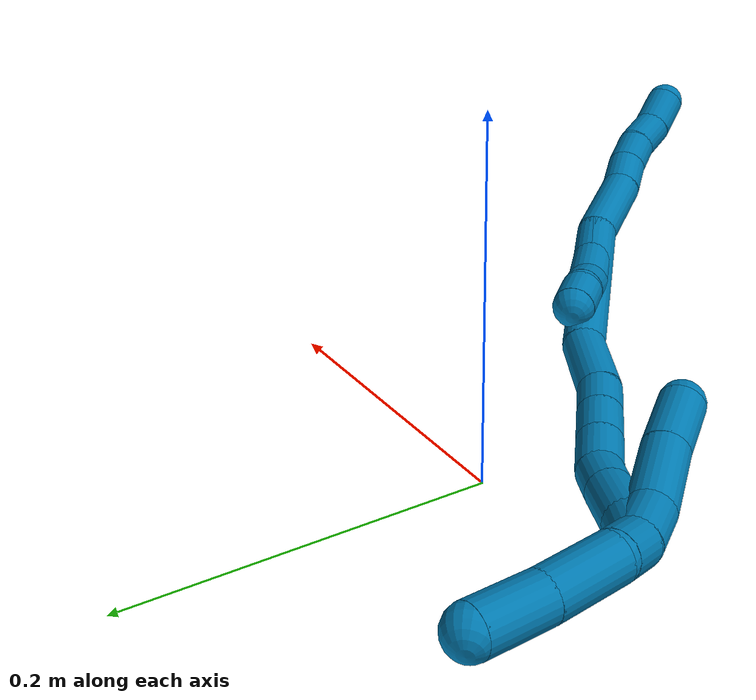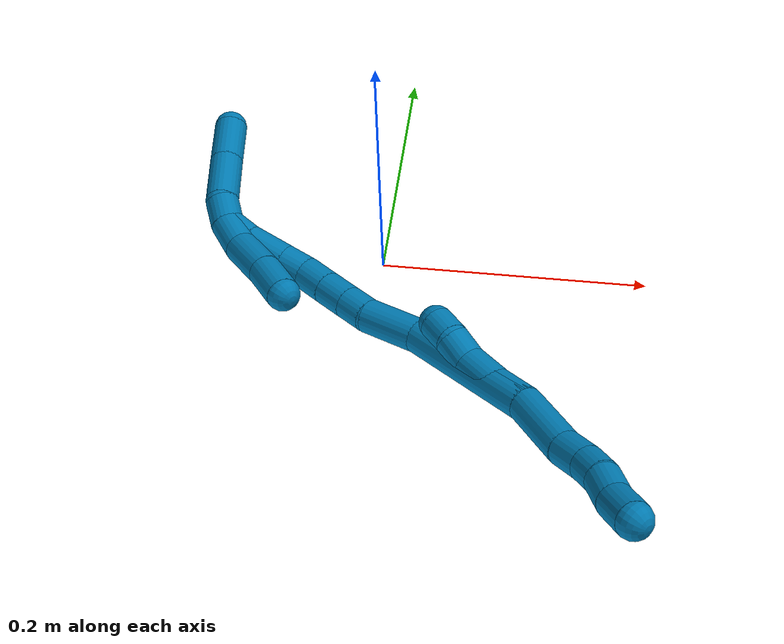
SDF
<sdf version="1.7">
 <world name="default">
  <model name="9">
   <static>0</static>
   <link name="9">
    <collision name="collision-cylinder-e_1_2_8">
     <pose>-0.001348 -0.007011 0.025579 0.267531 -0.05077 -0.006834</pose>
     <geometry><cylinder><radius>0.0125</radius><length>0.053114</length></cylinder></geometry>
     <surface>
      <friction><ode><mu>1.16</mu><mu2>1.16</mu2><slip1>0</slip1><slip2>0</slip2></ode></friction>
      <contact><ode><kp>1e+06</kp><kd>1</kd><max_vel>0</max_vel><min_depth>0.001</min_depth></ode></contact>
     </surface>
    </collision>
    <visual name="visual-cylinder-e_1_2_8">
     <pose>-0.001348 -0.007011 0.025579 0.267531 -0.05077 -0.006834</pose>
     <geometry><cylinder><radius>0.0125</radius><length>0.053114</length></cylinder></geometry>
     <material><ambient>0 0.490196 0.709804 1</ambient></material>
    </visual>
    <collision name="collision-cylinder-e_2_8_9">
     <pose>-0.004974 -0.015944 0.062963 0.16131 -0.188233 -0.01526</pose>
     <geometry><cylinder><radius>0.0125</radius><length>0.02435</length></cylinder></geometry>
     <surface>
      <friction><ode><mu>1.16</mu><mu2>1.16</mu2><slip1>0</slip1><slip2>0</slip2></ode></friction>
      <contact><ode><kp>1e+06</kp><kd>1</kd><max_vel>0</max_vel><min_depth>0.001</min_depth></ode></contact>
     </surface>
    </collision>
    <visual name="visual-cylinder-e_2_8_9">
     <pose>-0.004974 -0.015944 0.062963 0.16131 -0.188233 -0.01526</pose>
     <geometry><cylinder><radius>0.0125</radius><length>0.02435</length></cylinder></geometry>
     <material><ambient>0 0.490196 0.709804 1</ambient></material>
    </visual>
    <collision name="collision-cylinder-e_3_9_10">
     <pose>-0.009719 -0.021236 0.084675 0.328045 -0.231537 -0.038489</pose>
     <geometry><cylinder><radius>0.0125</radius><length>0.021504</length></cylinder></geometry>
     <surface>
      <friction><ode><mu>1.16</mu><mu2>1.16</mu2><slip1>0</slip1><slip2>0</slip2></ode></friction>
      <contact><ode><kp>1e+06</kp><kd>1</kd><max_vel>0</max_vel><min_depth>0.001</min_depth></ode></contact>
     </surface>
    </collision>
    <visual name="visual-cylinder-e_3_9_10">
     <pose>-0.009719 -0.021236 0.084675 0.328045 -0.231537 -0.038489</pose>
     <geometry><cylinder><radius>0.0125</radius><length>0.021504</length></cylinder></geometry>
     <material><ambient>0 0.490196 0.709804 1</ambient></material>
    </visual>
    <collision name="collision-cylinder-e_4_10_11">
     <pose>-0.013262 -0.029968 0.104903 0.479021 -0.092254 -0.022543</pose>
     <geometry><cylinder><radius>0.0125</radius><length>0.023359</length></cylinder></geometry>
     <surface>
      <friction><ode><mu>1.16</mu><mu2>1.16</mu2><slip1>0</slip1><slip2>0</slip2></ode></friction>
      <contact><ode><kp>1e+06</kp><kd>1</kd><max_vel>0</max_vel><min_depth>0.001</min_depth></ode></contact>
     </surface>
    </collision>
    <visual name="visual-cylinder-e_4_10_11">
     <pose>-0.013262 -0.029968 0.104903 0.479021 -0.092254 -0.022543</pose>
     <geometry><cylinder><radius>0.0125</radius><length>0.023359</length></cylinder></geometry>
     <material><ambient>0 0.490196 0.709804 1</ambient></material>
    </visual>
    <collision name="collision-cylinder-e_5_11_6">
     <pose>-0.018089 -0.04035 0.127559 0.386597 -0.274535 -0.054065</pose>
     <geometry><cylinder><radius>0.0125</radius><length>0.027673</length></cylinder></geometry>
     <surface>
      <friction><ode><mu>1.16</mu><mu2>1.16</mu2><slip1>0</slip1><slip2>0</slip2></ode></friction>
      <contact><ode><kp>1e+06</kp><kd>1</kd><max_vel>0</max_vel><min_depth>0.001</min_depth></ode></contact>
     </surface>
    </collision>
    <visual name="visual-cylinder-e_5_11_6">
     <pose>-0.018089 -0.04035 0.127559 0.386597 -0.274535 -0.054065</pose>
     <geometry><cylinder><radius>0.0125</radius><length>0.027673</length></cylinder></geometry>
     <material><ambient>0 0.490196 0.709804 1</ambient></material>
    </visual>
    <collision name="collision-cylinder-e_1_2_12">
     <pose>0.001048 0.000502 -0.014705 -3.10745 0.071116 -2.24669</pose>
     <geometry><cylinder><radius>0.0125</radius><length>0.029501</length></cylinder></geometry>
     <surface>
      <friction><ode><mu>1.16</mu><mu2>1.16</mu2><slip1>0</slip1><slip2>0</slip2></ode></friction>
      <contact><ode><kp>1e+06</kp><kd>1</kd><max_vel>0</max_vel><min_depth>0.001</min_depth></ode></contact>
     </surface>
    </collision>
    <visual name="visual-cylinder-e_1_2_12">
     <pose>0.001048 0.000502 -0.014705 -3.10745 0.071116 -2.24669</pose>
     <geometry><cylinder><radius>0.0125</radius><length>0.029501</length></cylinder></geometry>
     <material><ambient>0 0.490196 0.709804 1</ambient></material>
    </visual>
    <collision name="collision-cylinder-e_2_12_13">
     <pose>0.001263 0.001701 -0.044057 -3.09407 -0.056772 1.74782</pose>
     <geometry><cylinder><radius>0.0125</radius><length>0.029376</length></cylinder></geometry>
     <surface>
      <friction><ode><mu>1.16</mu><mu2>1.16</mu2><slip1>0</slip1><slip2>0</slip2></ode></friction>
      <contact><ode><kp>1e+06</kp><kd>1</kd><max_vel>0</max_vel><min_depth>0.001</min_depth></ode></contact>
     </surface>
    </collision>
    <visual name="visual-cylinder-e_2_12_13">
     <pose>0.001263 0.001701 -0.044057 -3.09407 -0.056772 1.74782</pose>
     <geometry><cylinder><radius>0.0125</radius><length>0.029376</length></cylinder></geometry>
     <material><ambient>0 0.490196 0.709804 1</ambient></material>
    </visual>
    <collision name="collision-cylinder-e_3_13_14">
     <pose>-0.003612 0.003012 -0.068329 -3.07784 -0.39686 2.82703</pose>
     <geometry><cylinder><radius>0.0125</radius><length>0.020914</length></cylinder></geometry>
     <surface>
      <friction><ode><mu>1.16</mu><mu2>1.16</mu2><slip1>0</slip1><slip2>0</slip2></ode></friction>
      <contact><ode><kp>1e+06</kp><kd>1</kd><max_vel>0</max_vel><min_depth>0.001</min_depth></ode></contact>
     </surface>
    </collision>
    <visual name="visual-cylinder-e_3_13_14">
     <pose>-0.003612 0.003012 -0.068329 -3.07784 -0.39686 2.82703</pose>
     <geometry><cylinder><radius>0.0125</radius><length>0.020914</length></cylinder></geometry>
     <material><ambient>0 0.490196 0.709804 1</ambient></material>
    </visual>
    <collision name="collision-cylinder-e_4_14_5">
     <pose>-0.008546 0.005218 -0.087892 -2.98284 -0.088399 1.0149</pose>
     <geometry><cylinder><radius>0.0125</radius><length>0.020209</length></cylinder></geometry>
     <surface>
      <friction><ode><mu>1.16</mu><mu2>1.16</mu2><slip1>0</slip1><slip2>0</slip2></ode></friction>
      <contact><ode><kp>1e+06</kp><kd>1</kd><max_vel>0</max_vel><min_depth>0.001</min_depth></ode></contact>
     </surface>
    </collision>
    <visual name="visual-cylinder-e_4_14_5">
     <pose>-0.008546 0.005218 -0.087892 -2.98284 -0.088399 1.0149</pose>
     <geometry><cylinder><radius>0.0125</radius><length>0.020209</length></cylinder></geometry>
     <material><ambient>0 0.490196 0.709804 1</ambient></material>
    </visual>
    <collision name="collision-cylinder-e_1_2_15">
     <pose>0.004029 0.001285 -0.056317 -3.11878 0.071397 -2.52324</pose>
     <geometry><cylinder><radius>0.0125</radius><length>0.112951</length></cylinder></geometry>
     <surface>
      <friction><ode><mu>1.16</mu><mu2>1.16</mu2><slip1>0</slip1><slip2>0</slip2></ode></friction>
      <contact><ode><kp>1e+06</kp><kd>1</kd><max_vel>0</max_vel><min_depth>0.001</min_depth></ode></contact>
     </surface>
    </collision>
    <visual name="visual-cylinder-e_1_2_15">
     <pose>0.004029 0.001285 -0.056317 -3.11878 0.071397 -2.52324</pose>
     <geometry><cylinder><radius>0.0125</radius><length>0.112951</length></cylinder></geometry>
     <material><ambient>0 0.490196 0.709804 1</ambient></material>
    </visual>
    <collision name="collision-cylinder-e_2_15_16">
     <pose>0.008054 -0.003176 -0.133818 2.87671 -0.000147 -0.001102</pose>
     <geometry><cylinder><radius>0.0125</radius><length>0.0439</length></cylinder></geometry>
     <surface>
      <friction><ode><mu>1.16</mu><mu2>1.16</mu2><slip1>0</slip1><slip2>0</slip2></ode></friction>
      <contact><ode><kp>1e+06</kp><kd>1</kd><max_vel>0</max_vel><min_depth>0.001</min_depth></ode></contact>
     </surface>
    </collision>
    <visual name="visual-cylinder-e_2_15_16">
     <pose>0.008054 -0.003176 -0.133818 2.87671 -0.000147 -0.001102</pose>
     <geometry><cylinder><radius>0.0125</radius><length>0.0439</length></cylinder></geometry>
     <material><ambient>0 0.490196 0.709804 1</ambient></material>
    </visual>
    <collision name="collision-cylinder-e_3_16_17">
     <pose>0.00761 -0.009505 -0.165444 3.0859 -0.042114 -1.29471</pose>
     <geometry><cylinder><radius>0.0125</radius><length>0.020934</length></cylinder></geometry>
     <surface>
      <friction><ode><mu>1.16</mu><mu2>1.16</mu2><slip1>0</slip1><slip2>0</slip2></ode></friction>
      <contact><ode><kp>1e+06</kp><kd>1</kd><max_vel>0</max_vel><min_depth>0.001</min_depth></ode></contact>
     </surface>
    </collision>
    <visual name="visual-cylinder-e_3_16_17">
     <pose>0.00761 -0.009505 -0.165444 3.0859 -0.042114 -1.29471</pose>
     <geometry><cylinder><radius>0.0125</radius><length>0.020934</length></cylinder></geometry>
     <material><ambient>0 0.490196 0.709804 1</ambient></material>
    </visual>
    <collision name="collision-cylinder-e_4_17_18">
     <pose>0.006622 -0.010756 -0.187631 3.0847 -0.046561 -1.37169</pose>
     <geometry><cylinder><radius>0.0125</radius><length>0.023556</length></cylinder></geometry>
     <surface>
      <friction><ode><mu>1.16</mu><mu2>1.16</mu2><slip1>0</slip1><slip2>0</slip2></ode></friction>
      <contact><ode><kp>1e+06</kp><kd>1</kd><max_vel>0</max_vel><min_depth>0.001</min_depth></ode></contact>
     </surface>
    </collision>
    <visual name="visual-cylinder-e_4_17_18">
     <pose>0.006622 -0.010756 -0.187631 3.0847 -0.046561 -1.37169</pose>
     <geometry><cylinder><radius>0.0125</radius><length>0.023556</length></cylinder></geometry>
     <material><ambient>0 0.490196 0.709804 1</ambient></material>
    </visual>
    <collision name="collision-cylinder-e_5_18_19">
     <pose>0.005357 -0.012073 -0.21162 3.08871 -0.058334 -1.66886</pose>
     <geometry><cylinder><radius>0.0125</radius><length>0.024561</length></cylinder></geometry>
     <surface>
      <friction><ode><mu>1.16</mu><mu2>1.16</mu2><slip1>0</slip1><slip2>0</slip2></ode></friction>
      <contact><ode><kp>1e+06</kp><kd>1</kd><max_vel>0</max_vel><min_depth>0.001</min_depth></ode></contact>
     </surface>
    </collision>
    <visual name="visual-cylinder-e_5_18_19">
     <pose>0.005357 -0.012073 -0.21162 3.08871 -0.058334 -1.66886</pose>
     <geometry><cylinder><radius>0.0125</radius><length>0.024561</length></cylinder></geometry>
     <material><ambient>0 0.490196 0.709804 1</ambient></material>
    </visual>
    <collision name="collision-cylinder-e_6_19_20">
     <pose>0.002457 -0.015853 -0.233283 2.82063 -0.216598 -1.1829</pose>
     <geometry><cylinder><radius>0.0125</radius><length>0.02033</length></cylinder></geometry>
     <surface>
      <friction><ode><mu>1.16</mu><mu2>1.16</mu2><slip1>0</slip1><slip2>0</slip2></ode></friction>
      <contact><ode><kp>1e+06</kp><kd>1</kd><max_vel>0</max_vel><min_depth>0.001</min_depth></ode></contact>
     </surface>
    </collision>
    <visual name="visual-cylinder-e_6_19_20">
     <pose>0.002457 -0.015853 -0.233283 2.82063 -0.216598 -1.1829</pose>
     <geometry><cylinder><radius>0.0125</radius><length>0.02033</length></cylinder></geometry>
     <material><ambient>0 0.490196 0.709804 1</ambient></material>
    </visual>
    <collision name="collision-cylinder-e_7_20_21">
     <pose>-0.003664 -0.024337 -0.257472 2.79392 -0.245529 -1.22496</pose>
     <geometry><cylinder><radius>0.0125</radius><length>0.032389</length></cylinder></geometry>
     <surface>
      <friction><ode><mu>1.16</mu><mu2>1.16</mu2><slip1>0</slip1><slip2>0</slip2></ode></friction>
      <contact><ode><kp>1e+06</kp><kd>1</kd><max_vel>0</max_vel><min_depth>0.001</min_depth></ode></contact>
     </surface>
    </collision>
    <visual name="visual-cylinder-e_7_20_21">
     <pose>-0.003664 -0.024337 -0.257472 2.79392 -0.245529 -1.22496</pose>
     <geometry><cylinder><radius>0.0125</radius><length>0.032389</length></cylinder></geometry>
     <material><ambient>0 0.490196 0.709804 1</ambient></material>
    </visual>
    <collision name="collision-cylinder-e_8_21_1">
     <pose>-0.011379 -0.03229 -0.281897 2.87841 -0.361236 -1.88723</pose>
     <geometry><cylinder><radius>0.0125</radius><length>0.02138</length></cylinder></geometry>
     <surface>
      <friction><ode><mu>1.16</mu><mu2>1.16</mu2><slip1>0</slip1><slip2>0</slip2></ode></friction>
      <contact><ode><kp>1e+06</kp><kd>1</kd><max_vel>0</max_vel><min_depth>0.001</min_depth></ode></contact>
     </surface>
    </collision>
    <visual name="visual-cylinder-e_8_21_1">
     <pose>-0.011379 -0.03229 -0.281897 2.87841 -0.361236 -1.88723</pose>
     <geometry><cylinder><radius>0.0125</radius><length>0.02138</length></cylinder></geometry>
     <material><ambient>0 0.490196 0.709804 1</ambient></material>
    </visual>
    <collision name="collision-cylinder-e_1_1_22">
     <pose>-0.019911 -0.031106 -0.300089 -2.72415 -0.470899 1.69502</pose>
     <geometry><cylinder><radius>0.0125</radius><length>0.020958</length></cylinder></geometry>
     <surface>
      <friction><ode><mu>1.16</mu><mu2>1.16</mu2><slip1>0</slip1><slip2>0</slip2></ode></friction>
      <contact><ode><kp>1e+06</kp><kd>1</kd><max_vel>0</max_vel><min_depth>0.001</min_depth></ode></contact>
     </surface>
    </collision>
    <visual name="visual-cylinder-e_1_1_22">
     <pose>-0.019911 -0.031106 -0.300089 -2.72415 -0.470899 1.69502</pose>
     <geometry><cylinder><radius>0.0125</radius><length>0.020958</length></cylinder></geometry>
     <material><ambient>0 0.490196 0.709804 1</ambient></material>
    </visual>
    <collision name="collision-cylinder-e_2_22_23">
     <pose>-0.029958 -0.014226 -0.324043 -2.43753 -0.255917 0.673812</pose>
     <geometry><cylinder><radius>0.0125</radius><length>0.041817</length></cylinder></geometry>
     <surface>
      <friction><ode><mu>1.16</mu><mu2>1.16</mu2><slip1>0</slip1><slip2>0</slip2></ode></friction>
      <contact><ode><kp>1e+06</kp><kd>1</kd><max_vel>0</max_vel><min_depth>0.001</min_depth></ode></contact>
     </surface>
    </collision>
    <visual name="visual-cylinder-e_2_22_23">
     <pose>-0.029958 -0.014226 -0.324043 -2.43753 -0.255917 0.673812</pose>
     <geometry><cylinder><radius>0.0125</radius><length>0.041817</length></cylinder></geometry>
     <material><ambient>0 0.490196 0.709804 1</ambient></material>
    </visual>
    <collision name="collision-cylinder-e_3_23_4">
     <pose>-0.041014 0.010661 -0.352657 -2.41223 -0.314818 0.78805</pose>
     <geometry><cylinder><radius>0.0125</radius><length>0.037225</length></cylinder></geometry>
     <surface>
      <friction><ode><mu>1.16</mu><mu2>1.16</mu2><slip1>0</slip1><slip2>0</slip2></ode></friction>
      <contact><ode><kp>1e+06</kp><kd>1</kd><max_vel>0</max_vel><min_depth>0.001</min_depth></ode></contact>
     </surface>
    </collision>
    <visual name="visual-cylinder-e_3_23_4">
     <pose>-0.041014 0.010661 -0.352657 -2.41223 -0.314818 0.78805</pose>
     <geometry><cylinder><radius>0.0125</radius><length>0.037225</length></cylinder></geometry>
     <material><ambient>0 0.490196 0.709804 1</ambient></material>
    </visual>
    <collision name="collision-cylinder-e_1_1_24">
     <pose>-0.012184 -0.037565 -0.27906 0.210762 0.228598 0.024284</pose>
     <geometry><cylinder><radius>0.0125</radius><length>0.026234</length></cylinder></geometry>
     <surface>
      <friction><ode><mu>1.16</mu><mu2>1.16</mu2><slip1>0</slip1><slip2>0</slip2></ode></friction>
      <contact><ode><kp>1e+06</kp><kd>1</kd><max_vel>0</max_vel><min_depth>0.001</min_depth></ode></contact>
     </surface>
    </collision>
    <visual name="visual-cylinder-e_1_1_24">
     <pose>-0.012184 -0.037565 -0.27906 0.210762 0.228598 0.024284</pose>
     <geometry><cylinder><radius>0.0125</radius><length>0.026234</length></cylinder></geometry>
     <material><ambient>0 0.490196 0.709804 1</ambient></material>
    </visual>
    <collision name="collision-cylinder-e_2_24_25">
     <pose>-0.009952 -0.043528 -0.246938 0.1661 -0.037156 -0.003093</pose>
     <geometry><cylinder><radius>0.0125</radius><length>0.039833</length></cylinder></geometry>
     <surface>
      <friction><ode><mu>1.16</mu><mu2>1.16</mu2><slip1>0</slip1><slip2>0</slip2></ode></friction>
      <contact><ode><kp>1e+06</kp><kd>1</kd><max_vel>0</max_vel><min_depth>0.001</min_depth></ode></contact>
     </surface>
    </collision>
    <visual name="visual-cylinder-e_2_24_25">
     <pose>-0.009952 -0.043528 -0.246938 0.1661 -0.037156 -0.003093</pose>
     <geometry><cylinder><radius>0.0125</radius><length>0.039833</length></cylinder></geometry>
     <material><ambient>0 0.490196 0.709804 1</ambient></material>
    </visual>
    <collision name="collision-cylinder-e_3_25_3">
     <pose>-0.010898 -0.050753 -0.210806 0.234052 -0.012191 -0.001433</pose>
     <geometry><cylinder><radius>0.0125</radius><length>0.033933</length></cylinder></geometry>
     <surface>
      <friction><ode><mu>1.16</mu><mu2>1.16</mu2><slip1>0</slip1><slip2>0</slip2></ode></friction>
      <contact><ode><kp>1e+06</kp><kd>1</kd><max_vel>0</max_vel><min_depth>0.001</min_depth></ode></contact>
     </surface>
    </collision>
    <visual name="visual-cylinder-e_3_25_3">
     <pose>-0.010898 -0.050753 -0.210806 0.234052 -0.012191 -0.001433</pose>
     <geometry><cylinder><radius>0.0125</radius><length>0.033933</length></cylinder></geometry>
     <material><ambient>0 0.490196 0.709804 1</ambient></material>
    </visual>
    <collision name="collision-sphere-3">
     <pose>-0.011105 -0.054688 -0.194303 0 -0 0</pose>
     <geometry><sphere><radius>0.0125</radius></sphere></geometry>
     <surface>
      <friction><ode><mu>1.16</mu><mu2>1.16</mu2><slip1>0</slip1><slip2>0</slip2></ode></friction>
      <contact><ode><kp>1e+06</kp><kd>1</kd><max_vel>0</max_vel><min_depth>0.001</min_depth></ode></contact>
     </surface>
    </collision>
    <visual name="visual-sphere-3">
     <pose>-0.011105 -0.054688 -0.194303 0 -0 0</pose>
     <geometry><sphere><radius>0.0125</radius></sphere></geometry>
     <material><ambient>0 0.490196 0.709804 1</ambient></material>
    </visual>
    <collision name="collision-sphere-25">
     <pose>-0.010692 -0.046819 -0.227309 0 -0 0</pose>
     <geometry><sphere><radius>0.0125</radius></sphere></geometry>
     <surface>
      <friction><ode><mu>1.16</mu><mu2>1.16</mu2><slip1>0</slip1><slip2>0</slip2></ode></friction>
      <contact><ode><kp>1e+06</kp><kd>1</kd><max_vel>0</max_vel><min_depth>0.001</min_depth></ode></contact>
     </surface>
    </collision>
    <visual name="visual-sphere-25">
     <pose>-0.010692 -0.046819 -0.227309 0 -0 0</pose>
     <geometry><sphere><radius>0.0125</radius></sphere></geometry>
     <material><ambient>0 0.490196 0.709804 1</ambient></material>
    </visual>
    <collision name="collision-sphere-24">
     <pose>-0.009212 -0.040237 -0.266567 0 -0 0</pose>
     <geometry><sphere><radius>0.0125</radius></sphere></geometry>
     <surface>
      <friction><ode><mu>1.16</mu><mu2>1.16</mu2><slip1>0</slip1><slip2>0</slip2></ode></friction>
      <contact><ode><kp>1e+06</kp><kd>1</kd><max_vel>0</max_vel><min_depth>0.001</min_depth></ode></contact>
     </surface>
    </collision>
    <visual name="visual-sphere-24">
     <pose>-0.009212 -0.040237 -0.266567 0 -0 0</pose>
     <geometry><sphere><radius>0.0125</radius></sphere></geometry>
     <material><ambient>0 0.490196 0.709804 1</ambient></material>
    </visual>
    <collision name="collision-sphere-4">
     <pose>-0.046777 0.022455 -0.365852 0 -0 0</pose>
     <geometry><sphere><radius>0.0125</radius></sphere></geometry>
     <surface>
      <friction><ode><mu>1.16</mu><mu2>1.16</mu2><slip1>0</slip1><slip2>0</slip2></ode></friction>
      <contact><ode><kp>1e+06</kp><kd>1</kd><max_vel>0</max_vel><min_depth>0.001</min_depth></ode></contact>
     </surface>
    </collision>
    <visual name="visual-sphere-4">
     <pose>-0.046777 0.022455 -0.365852 0 -0 0</pose>
     <geometry><sphere><radius>0.0125</radius></sphere></geometry>
     <material><ambient>0 0.490196 0.709804 1</ambient></material>
    </visual>
    <collision name="collision-sphere-23">
     <pose>-0.03525 -0.001132 -0.339461 0 -0 0</pose>
     <geometry><sphere><radius>0.0125</radius></sphere></geometry>
     <surface>
      <friction><ode><mu>1.16</mu><mu2>1.16</mu2><slip1>0</slip1><slip2>0</slip2></ode></friction>
      <contact><ode><kp>1e+06</kp><kd>1</kd><max_vel>0</max_vel><min_depth>0.001</min_depth></ode></contact>
     </surface>
    </collision>
    <visual name="visual-sphere-23">
     <pose>-0.03525 -0.001132 -0.339461 0 -0 0</pose>
     <geometry><sphere><radius>0.0125</radius></sphere></geometry>
     <material><ambient>0 0.490196 0.709804 1</ambient></material>
    </visual>
    <collision name="collision-sphere-22">
     <pose>-0.024665 -0.02732 -0.308625 0 -0 0</pose>
     <geometry><sphere><radius>0.0125</radius></sphere></geometry>
     <surface>
      <friction><ode><mu>1.16</mu><mu2>1.16</mu2><slip1>0</slip1><slip2>0</slip2></ode></friction>
      <contact><ode><kp>1e+06</kp><kd>1</kd><max_vel>0</max_vel><min_depth>0.001</min_depth></ode></contact>
     </surface>
    </collision>
    <visual name="visual-sphere-22">
     <pose>-0.024665 -0.02732 -0.308625 0 -0 0</pose>
     <geometry><sphere><radius>0.0125</radius></sphere></geometry>
     <material><ambient>0 0.490196 0.709804 1</ambient></material>
    </visual>
    <collision name="collision-sphere-1">
     <pose>-0.015157 -0.034892 -0.291553 0 -0 0</pose>
     <geometry><sphere><radius>0.0125</radius></sphere></geometry>
     <surface>
      <friction><ode><mu>1.16</mu><mu2>1.16</mu2><slip1>0</slip1><slip2>0</slip2></ode></friction>
      <contact><ode><kp>1e+06</kp><kd>1</kd><max_vel>0</max_vel><min_depth>0.001</min_depth></ode></contact>
     </surface>
    </collision>
    <visual name="visual-sphere-1">
     <pose>-0.015157 -0.034892 -0.291553 0 -0 0</pose>
     <geometry><sphere><radius>0.0125</radius></sphere></geometry>
     <material><ambient>0 0.490196 0.709804 1</ambient></material>
    </visual>
    <collision name="collision-sphere-21">
     <pose>-0.0076 -0.029689 -0.272241 0 -0 0</pose>
     <geometry><sphere><radius>0.0125</radius></sphere></geometry>
     <surface>
      <friction><ode><mu>1.16</mu><mu2>1.16</mu2><slip1>0</slip1><slip2>0</slip2></ode></friction>
      <contact><ode><kp>1e+06</kp><kd>1</kd><max_vel>0</max_vel><min_depth>0.001</min_depth></ode></contact>
     </surface>
    </collision>
    <visual name="visual-sphere-21">
     <pose>-0.0076 -0.029689 -0.272241 0 -0 0</pose>
     <geometry><sphere><radius>0.0125</radius></sphere></geometry>
     <material><ambient>0 0.490196 0.709804 1</ambient></material>
    </visual>
    <collision name="collision-sphere-6">
     <pose>-0.021841 -0.045372 0.139894 0 -0 0</pose>
     <geometry><sphere><radius>0.0125</radius></sphere></geometry>
     <surface>
      <friction><ode><mu>1.16</mu><mu2>1.16</mu2><slip1>0</slip1><slip2>0</slip2></ode></friction>
      <contact><ode><kp>1e+06</kp><kd>1</kd><max_vel>0</max_vel><min_depth>0.001</min_depth></ode></contact>
     </surface>
    </collision>
    <visual name="visual-sphere-6">
     <pose>-0.021841 -0.045372 0.139894 0 -0 0</pose>
     <geometry><sphere><radius>0.0125</radius></sphere></geometry>
     <material><ambient>0 0.490196 0.709804 1</ambient></material>
    </visual>
    <collision name="collision-sphere-11">
     <pose>-0.014338 -0.035329 0.115224 0 -0 0</pose>
     <geometry><sphere><radius>0.0125</radius></sphere></geometry>
     <surface>
      <friction><ode><mu>1.16</mu><mu2>1.16</mu2><slip1>0</slip1><slip2>0</slip2></ode></friction>
      <contact><ode><kp>1e+06</kp><kd>1</kd><max_vel>0</max_vel><min_depth>0.001</min_depth></ode></contact>
     </surface>
    </collision>
    <visual name="visual-sphere-11">
     <pose>-0.014338 -0.035329 0.115224 0 -0 0</pose>
     <geometry><sphere><radius>0.0125</radius></sphere></geometry>
     <material><ambient>0 0.490196 0.709804 1</ambient></material>
    </visual>
    <collision name="collision-sphere-10">
     <pose>-0.012186 -0.024608 0.094582 0 -0 0</pose>
     <geometry><sphere><radius>0.0125</radius></sphere></geometry>
     <surface>
      <friction><ode><mu>1.16</mu><mu2>1.16</mu2><slip1>0</slip1><slip2>0</slip2></ode></friction>
      <contact><ode><kp>1e+06</kp><kd>1</kd><max_vel>0</max_vel><min_depth>0.001</min_depth></ode></contact>
     </surface>
    </collision>
    <visual name="visual-sphere-10">
     <pose>-0.012186 -0.024608 0.094582 0 -0 0</pose>
     <geometry><sphere><radius>0.0125</radius></sphere></geometry>
     <material><ambient>0 0.490196 0.709804 1</ambient></material>
    </visual>
    <collision name="collision-sphere-9">
     <pose>-0.007252 -0.017864 0.074768 0 -0 0</pose>
     <geometry><sphere><radius>0.0125</radius></sphere></geometry>
     <surface>
      <friction><ode><mu>1.16</mu><mu2>1.16</mu2><slip1>0</slip1><slip2>0</slip2></ode></friction>
      <contact><ode><kp>1e+06</kp><kd>1</kd><max_vel>0</max_vel><min_depth>0.001</min_depth></ode></contact>
     </surface>
    </collision>
    <visual name="visual-sphere-9">
     <pose>-0.007252 -0.017864 0.074768 0 -0 0</pose>
     <geometry><sphere><radius>0.0125</radius></sphere></geometry>
     <material><ambient>0 0.490196 0.709804 1</ambient></material>
    </visual>
    <collision name="collision-sphere-2">
     <geometry><sphere><radius>0.0125</radius></sphere></geometry>
     <surface>
      <friction><ode><mu>1.16</mu><mu2>1.16</mu2><slip1>0</slip1><slip2>0</slip2></ode></friction>
      <contact><ode><kp>1e+06</kp><kd>1</kd><max_vel>0</max_vel><min_depth>0.001</min_depth></ode></contact>
     </surface>
    </collision>
    <visual name="visual-sphere-2">
     <geometry><sphere><radius>0.0125</radius></sphere></geometry>
     <material><ambient>0 0.490196 0.709804 1</ambient></material>
    </visual>
    <collision name="collision-sphere-19">
     <pose>0.004641 -0.012721 -0.223863 0 -0 0</pose>
     <geometry><sphere><radius>0.0125</radius></sphere></geometry>
     <surface>
      <friction><ode><mu>1.16</mu><mu2>1.16</mu2><slip1>0</slip1><slip2>0</slip2></ode></friction>
      <contact><ode><kp>1e+06</kp><kd>1</kd><max_vel>0</max_vel><min_depth>0.001</min_depth></ode></contact>
     </surface>
    </collision>
    <visual name="visual-sphere-19">
     <pose>0.004641 -0.012721 -0.223863 0 -0 0</pose>
     <geometry><sphere><radius>0.0125</radius></sphere></geometry>
     <material><ambient>0 0.490196 0.709804 1</ambient></material>
    </visual>
    <collision name="collision-sphere-8">
     <pose>-0.002695 -0.014023 0.051159 0 -0 0</pose>
     <geometry><sphere><radius>0.0125</radius></sphere></geometry>
     <surface>
      <friction><ode><mu>1.16</mu><mu2>1.16</mu2><slip1>0</slip1><slip2>0</slip2></ode></friction>
      <contact><ode><kp>1e+06</kp><kd>1</kd><max_vel>0</max_vel><min_depth>0.001</min_depth></ode></contact>
     </surface>
    </collision>
    <visual name="visual-sphere-8">
     <pose>-0.002695 -0.014023 0.051159 0 -0 0</pose>
     <geometry><sphere><radius>0.0125</radius></sphere></geometry>
     <material><ambient>0 0.490196 0.709804 1</ambient></material>
    </visual>
    <collision name="collision-sphere-12">
     <pose>0.002096 0.001004 -0.029409 0 -0 0</pose>
     <geometry><sphere><radius>0.0125</radius></sphere></geometry>
     <surface>
      <friction><ode><mu>1.16</mu><mu2>1.16</mu2><slip1>0</slip1><slip2>0</slip2></ode></friction>
      <contact><ode><kp>1e+06</kp><kd>1</kd><max_vel>0</max_vel><min_depth>0.001</min_depth></ode></contact>
     </surface>
    </collision>
    <visual name="visual-sphere-12">
     <pose>0.002096 0.001004 -0.029409 0 -0 0</pose>
     <geometry><sphere><radius>0.0125</radius></sphere></geometry>
     <material><ambient>0 0.490196 0.709804 1</ambient></material>
    </visual>
    <collision name="collision-sphere-13">
     <pose>0.000429 0.002398 -0.058705 0 -0 0</pose>
     <geometry><sphere><radius>0.0125</radius></sphere></geometry>
     <surface>
      <friction><ode><mu>1.16</mu><mu2>1.16</mu2><slip1>0</slip1><slip2>0</slip2></ode></friction>
      <contact><ode><kp>1e+06</kp><kd>1</kd><max_vel>0</max_vel><min_depth>0.001</min_depth></ode></contact>
     </surface>
    </collision>
    <visual name="visual-sphere-13">
     <pose>0.000429 0.002398 -0.058705 0 -0 0</pose>
     <geometry><sphere><radius>0.0125</radius></sphere></geometry>
     <material><ambient>0 0.490196 0.709804 1</ambient></material>
    </visual>
    <collision name="collision-sphere-14">
     <pose>-0.007654 0.003627 -0.077954 0 -0 0</pose>
     <geometry><sphere><radius>0.0125</radius></sphere></geometry>
     <surface>
      <friction><ode><mu>1.16</mu><mu2>1.16</mu2><slip1>0</slip1><slip2>0</slip2></ode></friction>
      <contact><ode><kp>1e+06</kp><kd>1</kd><max_vel>0</max_vel><min_depth>0.001</min_depth></ode></contact>
     </surface>
    </collision>
    <visual name="visual-sphere-14">
     <pose>-0.007654 0.003627 -0.077954 0 -0 0</pose>
     <geometry><sphere><radius>0.0125</radius></sphere></geometry>
     <material><ambient>0 0.490196 0.709804 1</ambient></material>
    </visual>
    <collision name="collision-sphere-5">
     <pose>-0.009438 0.006809 -0.097831 0 -0 0</pose>
     <geometry><sphere><radius>0.0125</radius></sphere></geometry>
     <surface>
      <friction><ode><mu>1.16</mu><mu2>1.16</mu2><slip1>0</slip1><slip2>0</slip2></ode></friction>
      <contact><ode><kp>1e+06</kp><kd>1</kd><max_vel>0</max_vel><min_depth>0.001</min_depth></ode></contact>
     </surface>
    </collision>
    <visual name="visual-sphere-5">
     <pose>-0.009438 0.006809 -0.097831 0 -0 0</pose>
     <geometry><sphere><radius>0.0125</radius></sphere></geometry>
     <material><ambient>0 0.490196 0.709804 1</ambient></material>
    </visual>
    <collision name="collision-sphere-15">
     <pose>0.008058 0.00257 -0.112634 0 -0 0</pose>
     <geometry><sphere><radius>0.0125</radius></sphere></geometry>
     <surface>
      <friction><ode><mu>1.16</mu><mu2>1.16</mu2><slip1>0</slip1><slip2>0</slip2></ode></friction>
      <contact><ode><kp>1e+06</kp><kd>1</kd><max_vel>0</max_vel><min_depth>0.001</min_depth></ode></contact>
     </surface>
    </collision>
    <visual name="visual-sphere-15">
     <pose>0.008058 0.00257 -0.112634 0 -0 0</pose>
     <geometry><sphere><radius>0.0125</radius></sphere></geometry>
     <material><ambient>0 0.490196 0.709804 1</ambient></material>
    </visual>
    <collision name="collision-sphere-16">
     <pose>0.008051 -0.008922 -0.155003 0 -0 0</pose>
     <geometry><sphere><radius>0.0125</radius></sphere></geometry>
     <surface>
      <friction><ode><mu>1.16</mu><mu2>1.16</mu2><slip1>0</slip1><slip2>0</slip2></ode></friction>
      <contact><ode><kp>1e+06</kp><kd>1</kd><max_vel>0</max_vel><min_depth>0.001</min_depth></ode></contact>
     </surface>
    </collision>
    <visual name="visual-sphere-16">
     <pose>0.008051 -0.008922 -0.155003 0 -0 0</pose>
     <geometry><sphere><radius>0.0125</radius></sphere></geometry>
     <material><ambient>0 0.490196 0.709804 1</ambient></material>
    </visual>
    <collision name="collision-sphere-17">
     <pose>0.00717 -0.010087 -0.175885 0 -0 0</pose>
     <geometry><sphere><radius>0.0125</radius></sphere></geometry>
     <surface>
      <friction><ode><mu>1.16</mu><mu2>1.16</mu2><slip1>0</slip1><slip2>0</slip2></ode></friction>
      <contact><ode><kp>1e+06</kp><kd>1</kd><max_vel>0</max_vel><min_depth>0.001</min_depth></ode></contact>
     </surface>
    </collision>
    <visual name="visual-sphere-17">
     <pose>0.00717 -0.010087 -0.175885 0 -0 0</pose>
     <geometry><sphere><radius>0.0125</radius></sphere></geometry>
     <material><ambient>0 0.490196 0.709804 1</ambient></material>
    </visual>
    <collision name="collision-sphere-18">
     <pose>0.006073 -0.011425 -0.199378 0 -0 0</pose>
     <geometry><sphere><radius>0.0125</radius></sphere></geometry>
     <surface>
      <friction><ode><mu>1.16</mu><mu2>1.16</mu2><slip1>0</slip1><slip2>0</slip2></ode></friction>
      <contact><ode><kp>1e+06</kp><kd>1</kd><max_vel>0</max_vel><min_depth>0.001</min_depth></ode></contact>
     </surface>
    </collision>
    <visual name="visual-sphere-18">
     <pose>0.006073 -0.011425 -0.199378 0 -0 0</pose>
     <geometry><sphere><radius>0.0125</radius></sphere></geometry>
     <material><ambient>0 0.490196 0.709804 1</ambient></material>
    </visual>
    <collision name="collision-sphere-20">
     <pose>0.000272 -0.018984 -0.242703 0 -0 0</pose>
     <geometry><sphere><radius>0.0125</radius></sphere></geometry>
     <surface>
      <friction><ode><mu>1.16</mu><mu2>1.16</mu2><slip1>0</slip1><slip2>0</slip2></ode></friction>
      <contact><ode><kp>1e+06</kp><kd>1</kd><max_vel>0</max_vel><min_depth>0.001</min_depth></ode></contact>
     </surface>
    </collision>
    <visual name="visual-sphere-20">
     <pose>0.000272 -0.018984 -0.242703 0 -0 0</pose>
     <geometry><sphere><radius>0.0125</radius></sphere></geometry>
     <material><ambient>0 0.490196 0.709804 1</ambient></material>
    </visual>
    <inertial>
     <pose>-0.006309 -0.014182 -0.127924 0 -0 0</pose>
     <mass>0.75</mass>
     <inertia><ixx>-0.000125</ixx><ixy>0</ixy><ixz>0</ixz><iyy>5e-05</iyy><iyz>0</iyz><izz>-1.5e-05</izz></inertia>
    </inertial>
   </link>
   <pose>0.118856 -0.170365 0.069898 -0.724778 1.30533 -1.47414</pose>
  </model>
 </world>
</sdf>
